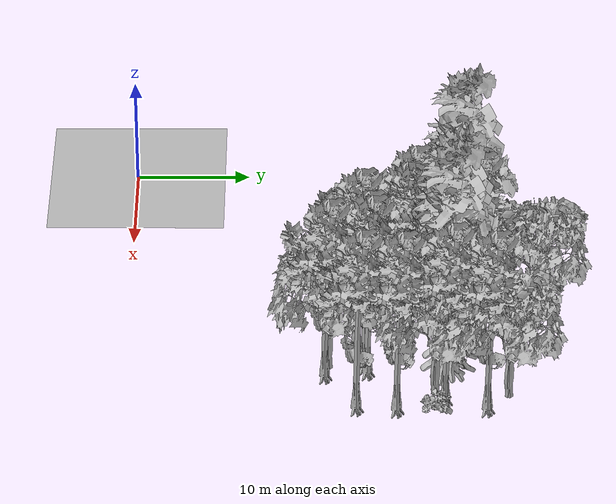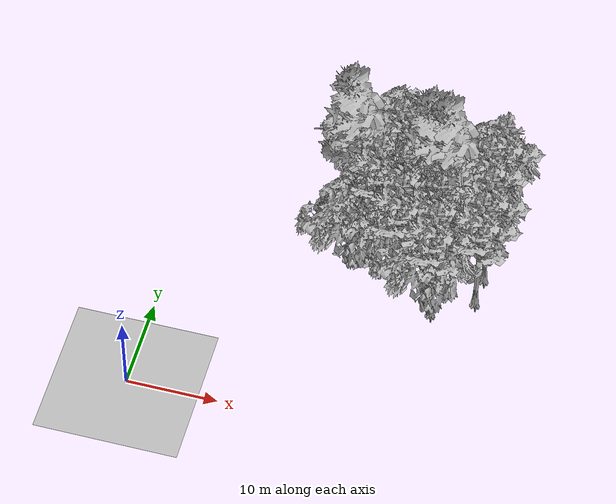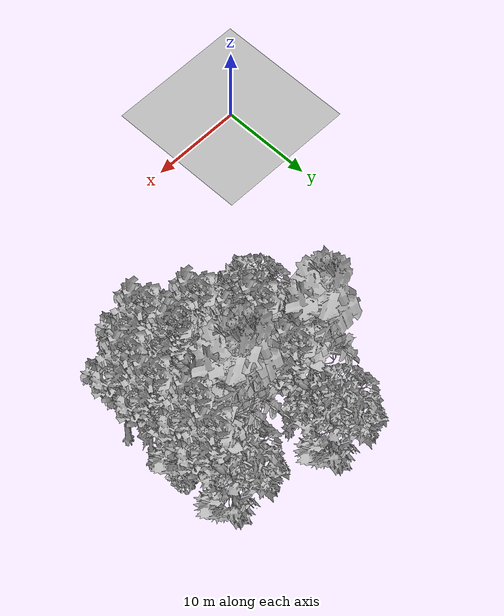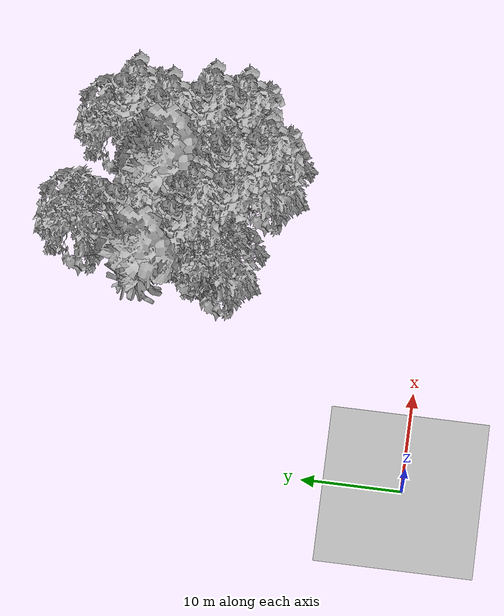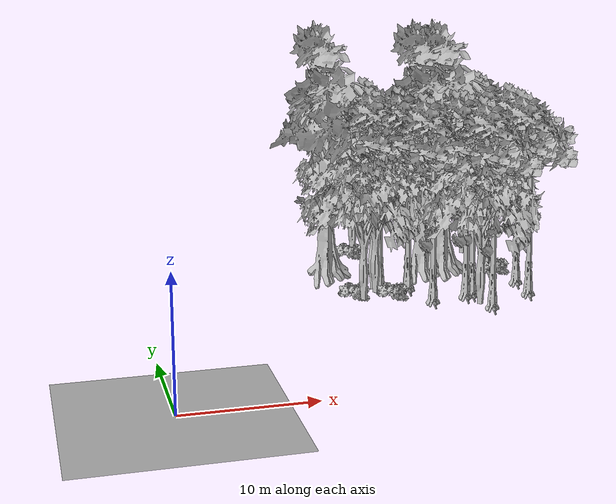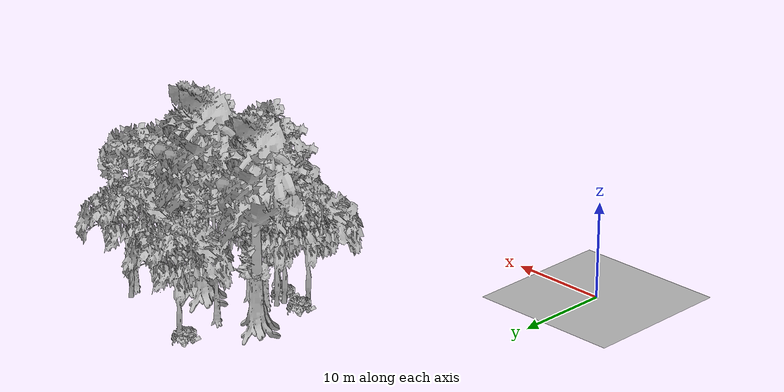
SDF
<sdf version="1.7">
 <world name="default">
  <model name="ground_plane">
   <static>1</static>
   <link name="link">
    <collision name="collision">
     <geometry><plane><normal>0 0 1</normal><size>70 70</size></plane></geometry>
     <surface><contact><ode><min_depth>0.01</min_depth><max_vel>0</max_vel></ode></contact></surface>
    </collision>
    <visual name="grass">
     <cast_shadows>0</cast_shadows>
     <geometry>
      <mesh>
       <scale>0.29000000000000004 0.29000000000000004 0.1</scale>
       <uri>file://grass_plane/meshes/grass_plane.dae</uri>
      </mesh>
     </geometry>
    </visual>
   </link>
  </model>
  <model name="Tree 5">
   <static>1</static>
   <pose>17.554701327103224 28.37882348100289 0 1.57079 -0 0</pose>
   <link name="link">
    <collision name="collision">
     <geometry><mesh><scale>5 5 5</scale><uri>model://tree_4/meshes/tree_4.obj</uri></mesh></geometry>
    </collision>
    <visual name="visual">
     <geometry><mesh><scale>5 5 5</scale><uri>model://tree_4/meshes/tree_4.obj</uri></mesh></geometry>
    </visual>
   </link>
  </model>
  <model name="Tree 16">
   <static>1</static>
   <pose>23.783157276569398 23.85742574105118 0 1.57079 -0 0</pose>
   <link name="link">
    <collision name="collision">
     <geometry><mesh><scale>5 5 5</scale><uri>model://tree_9/meshes/tree_9.obj</uri></mesh></geometry>
    </collision>
    <visual name="visual">
     <geometry><mesh><scale>5 5 5</scale><uri>model://tree_9/meshes/tree_9.obj</uri></mesh></geometry>
    </visual>
   </link>
  </model>
  <model name="Tree 28">
   <static>1</static>
   <pose>20.343108176317564 23.280481204357656 0 1.57079 -0 0</pose>
   <link name="link">
    <collision name="collision">
     <geometry><mesh><scale>5 5 5</scale><uri>model://tree_2/meshes/tree_2.obj</uri></mesh></geometry>
    </collision>
    <visual name="visual">
     <geometry><mesh><scale>5 5 5</scale><uri>model://tree_2/meshes/tree_2.obj</uri></mesh></geometry>
    </visual>
   </link>
  </model>
  <model name="Tree 29">
   <static>1</static>
   <pose>28.459324800288883 20.311680133557118 0 1.57079 -0 0</pose>
   <link name="link">
    <collision name="collision">
     <geometry><mesh><scale>5 5 5</scale><uri>model://tree_9/meshes/tree_9.obj</uri></mesh></geometry>
    </collision>
    <visual name="visual">
     <geometry><mesh><scale>5 5 5</scale><uri>model://tree_9/meshes/tree_9.obj</uri></mesh></geometry>
    </visual>
   </link>
  </model>
  <model name="Tree 51">
   <static>1</static>
   <pose>22.218995254534526 29.427761245832983 0 1.57079 -0 0</pose>
   <link name="link">
    <collision name="collision">
     <geometry><mesh><scale>5 5 5</scale><uri>model://tree_9/meshes/tree_9.obj</uri></mesh></geometry>
    </collision>
    <visual name="visual">
     <geometry><mesh><scale>5 5 5</scale><uri>model://tree_9/meshes/tree_9.obj</uri></mesh></geometry>
    </visual>
   </link>
  </model>
  <model name="Tree 81">
   <static>1</static>
   <pose>24.617984174921354 19.423598925091028 0 1.57079 -0 0</pose>
   <link name="link">
    <collision name="collision">
     <geometry><mesh><scale>5 5 5</scale><uri>model://tree_9/meshes/tree_9.obj</uri></mesh></geometry>
    </collision>
    <visual name="visual">
     <geometry><mesh><scale>5 5 5</scale><uri>model://tree_9/meshes/tree_9.obj</uri></mesh></geometry>
    </visual>
   </link>
  </model>
  <model name="Tree 91">
   <static>1</static>
   <pose>28.02528212831031 27.108075205009648 0 1.57079 -0 0</pose>
   <link name="link">
    <collision name="collision">
     <geometry><mesh><scale>5 5 5</scale><uri>model://tree_4/meshes/tree_4.obj</uri></mesh></geometry>
    </collision>
    <visual name="visual">
     <geometry><mesh><scale>5 5 5</scale><uri>model://tree_4/meshes/tree_4.obj</uri></mesh></geometry>
    </visual>
   </link>
  </model>
  <model name="Tree 97">
   <static>1</static>
   <pose>33.269615217792705 19.336078818611448 0 1.57079 -0 0</pose>
   <link name="link">
    <collision name="collision">
     <geometry><mesh><scale>5 5 5</scale><uri>model://tree_9/meshes/tree_9.obj</uri></mesh></geometry>
    </collision>
    <visual name="visual">
     <geometry><mesh><scale>5 5 5</scale><uri>model://tree_9/meshes/tree_9.obj</uri></mesh></geometry>
    </visual>
   </link>
  </model>
  <model name="Tree 114">
   <static>1</static>
   <pose>32.2863269273936 26.726637115351828 0 1.57079 -0 0</pose>
   <link name="link">
    <collision name="collision">
     <geometry><mesh><scale>5 5 5</scale><uri>model://tree_9/meshes/tree_9.obj</uri></mesh></geometry>
    </collision>
    <visual name="visual">
     <geometry><mesh><scale>5 5 5</scale><uri>model://tree_9/meshes/tree_9.obj</uri></mesh></geometry>
    </visual>
   </link>
  </model>
  <model name="Tree 136">
   <static>1</static>
   <pose>23.63129165080357 23.254099746061804 0 1.57079 -0 0</pose>
   <link name="link">
    <collision name="collision">
     <geometry><mesh><scale>5 5 5</scale><uri>model://tree_9/meshes/tree_9.obj</uri></mesh></geometry>
    </collision>
    <visual name="visual">
     <geometry><mesh><scale>5 5 5</scale><uri>model://tree_9/meshes/tree_9.obj</uri></mesh></geometry>
    </visual>
   </link>
  </model>
  <model name="Tree 140">
   <static>1</static>
   <pose>27.78838341750646 20.05177135492201 0 1.57079 -0 0</pose>
   <link name="link">
    <collision name="collision">
     <geometry><mesh><scale>5 5 5</scale><uri>model://tree_9/meshes/tree_9.obj</uri></mesh></geometry>
    </collision>
    <visual name="visual">
     <geometry><mesh><scale>5 5 5</scale><uri>model://tree_9/meshes/tree_9.obj</uri></mesh></geometry>
    </visual>
   </link>
  </model>
  <model name="Tree 154">
   <static>1</static>
   <pose>31.70966095761146 32.009826295775014 0 1.57079 -0 0</pose>
   <link name="link">
    <collision name="collision">
     <geometry><mesh><scale>5 5 5</scale><uri>model://tree_2/meshes/tree_2.obj</uri></mesh></geometry>
    </collision>
    <visual name="visual">
     <geometry><mesh><scale>5 5 5</scale><uri>model://tree_2/meshes/tree_2.obj</uri></mesh></geometry>
    </visual>
   </link>
  </model>
  <model name="Tree 169">
   <static>1</static>
   <pose>33.40637774664583 30.189914170681618 0 1.57079 -0 0</pose>
   <link name="link">
    <collision name="collision">
     <geometry><mesh><scale>5 5 5</scale><uri>model://tree_9/meshes/tree_9.obj</uri></mesh></geometry>
    </collision>
    <visual name="visual">
     <geometry><mesh><scale>5 5 5</scale><uri>model://tree_9/meshes/tree_9.obj</uri></mesh></geometry>
    </visual>
   </link>
  </model>
  <model name="Tree 178">
   <static>1</static>
   <pose>18.75817990418082 20.65745948856558 0 1.57079 -0 0</pose>
   <link name="link">
    <collision name="collision">
     <geometry><mesh><scale>5 5 5</scale><uri>model://tree_2/meshes/tree_2.obj</uri></mesh></geometry>
    </collision>
    <visual name="visual">
     <geometry><mesh><scale>5 5 5</scale><uri>model://tree_2/meshes/tree_2.obj</uri></mesh></geometry>
    </visual>
   </link>
  </model>
  <model name="Tree 182">
   <static>1</static>
   <pose>21.273849386636158 23.99300848130232 0 1.57079 -0 0</pose>
   <link name="link">
    <collision name="collision">
     <geometry><mesh><scale>5 5 5</scale><uri>model://tree_9/meshes/tree_9.obj</uri></mesh></geometry>
    </collision>
    <visual name="visual">
     <geometry><mesh><scale>5 5 5</scale><uri>model://tree_9/meshes/tree_9.obj</uri></mesh></geometry>
    </visual>
   </link>
  </model>
  <model name="Tree 206">
   <static>1</static>
   <pose>28.948441745368577 16.730375826815227 0 1.57079 -0 0</pose>
   <link name="link">
    <collision name="collision">
     <geometry><mesh><scale>5 5 5</scale><uri>model://tree_9/meshes/tree_9.obj</uri></mesh></geometry>
    </collision>
    <visual name="visual">
     <geometry><mesh><scale>5 5 5</scale><uri>model://tree_9/meshes/tree_9.obj</uri></mesh></geometry>
    </visual>
   </link>
  </model>
  <model name="Tree 209">
   <static>1</static>
   <pose>26.285940740393123 27.314547572535773 0 1.57079 -0 0</pose>
   <link name="link">
    <collision name="collision">
     <geometry><mesh><scale>5 5 5</scale><uri>model://tree_4/meshes/tree_4.obj</uri></mesh></geometry>
    </collision>
    <visual name="visual">
     <geometry><mesh><scale>5 5 5</scale><uri>model://tree_4/meshes/tree_4.obj</uri></mesh></geometry>
    </visual>
   </link>
  </model>
  <model name="Tree 219">
   <static>1</static>
   <pose>21.61332907183877 34.592983988575625 0 1.57079 -0 0</pose>
   <link name="link">
    <collision name="collision">
     <geometry><mesh><scale>5 5 5</scale><uri>model://tree_2/meshes/tree_2.obj</uri></mesh></geometry>
    </collision>
    <visual name="visual">
     <geometry><mesh><scale>5 5 5</scale><uri>model://tree_2/meshes/tree_2.obj</uri></mesh></geometry>
    </visual>
   </link>
  </model>
  <model name="Tree 223">
   <static>1</static>
   <pose>27.86664199193376 17.026420902220273 0 1.57079 -0 0</pose>
   <link name="link">
    <collision name="collision">
     <geometry><mesh><scale>5 5 5</scale><uri>model://tree_2/meshes/tree_2.obj</uri></mesh></geometry>
    </collision>
    <visual name="visual">
     <geometry><mesh><scale>5 5 5</scale><uri>model://tree_2/meshes/tree_2.obj</uri></mesh></geometry>
    </visual>
   </link>
  </model>
  <model name="Tree 226">
   <static>1</static>
   <pose>31.39666471019227 25.891716264204234 0 1.57079 -0 0</pose>
   <link name="link">
    <collision name="collision">
     <geometry><mesh><scale>5 5 5</scale><uri>model://tree_2/meshes/tree_2.obj</uri></mesh></geometry>
    </collision>
    <visual name="visual">
     <geometry><mesh><scale>5 5 5</scale><uri>model://tree_2/meshes/tree_2.obj</uri></mesh></geometry>
    </visual>
   </link>
  </model>
  <model name="Tree 230">
   <static>1</static>
   <pose>33.48543555075716 22.68212584879644 0 1.57079 -0 0</pose>
   <link name="link">
    <collision name="collision">
     <geometry><mesh><scale>5 5 5</scale><uri>model://tree_9/meshes/tree_9.obj</uri></mesh></geometry>
    </collision>
    <visual name="visual">
     <geometry><mesh><scale>5 5 5</scale><uri>model://tree_9/meshes/tree_9.obj</uri></mesh></geometry>
    </visual>
   </link>
  </model>
  <model name="Tree 231">
   <static>1</static>
   <pose>20.281055681246258 22.346895854114003 0 1.57079 -0 0</pose>
   <link name="link">
    <collision name="collision">
     <geometry><mesh><scale>5 5 5</scale><uri>model://tree_2/meshes/tree_2.obj</uri></mesh></geometry>
    </collision>
    <visual name="visual">
     <geometry><mesh><scale>5 5 5</scale><uri>model://tree_2/meshes/tree_2.obj</uri></mesh></geometry>
    </visual>
   </link>
  </model>
  <model name="Bush 10">
   <static>1</static>
   <pose>21.193216710812514 34.157234747886946 0 1.57079 -0 0</pose>
   <link name="link">
    <collision name="collision">
     <geometry><mesh><scale>2 2 2</scale><uri>model://bush_2/meshes/bush_2.obj</uri></mesh></geometry>
    </collision>
    <visual name="visual">
     <geometry><mesh><scale>5 5 5</scale><uri>model://bush_2/meshes/bush_2.obj</uri></mesh></geometry>
    </visual>
   </link>
  </model>
  <model name="Bush 38">
   <static>1</static>
   <pose>21.569982649164622 21.145830320336437 0 1.57079 -0 0</pose>
   <link name="link">
    <collision name="collision">
     <geometry><mesh><scale>2 2 2</scale><uri>model://bush_2/meshes/bush_2.obj</uri></mesh></geometry>
    </collision>
    <visual name="visual">
     <geometry><mesh><scale>5 5 5</scale><uri>model://bush_2/meshes/bush_2.obj</uri></mesh></geometry>
    </visual>
   </link>
  </model>
  <model name="Bush 39">
   <static>1</static>
   <pose>32.7265157668765 26.000458213351735 0 1.57079 -0 0</pose>
   <link name="link">
    <collision name="collision">
     <geometry><mesh><scale>2 2 2</scale><uri>model://bush_2/meshes/bush_2.obj</uri></mesh></geometry>
    </collision>
    <visual name="visual">
     <geometry><mesh><scale>5 5 5</scale><uri>model://bush_2/meshes/bush_2.obj</uri></mesh></geometry>
    </visual>
   </link>
  </model>
  <model name="Bush 53">
   <static>1</static>
   <pose>18.39101278427185 21.967975382510076 0 1.57079 -0 0</pose>
   <link name="link">
    <collision name="collision">
     <geometry><mesh><scale>2 2 2</scale><uri>model://bush_2/meshes/bush_2.obj</uri></mesh></geometry>
    </collision>
    <visual name="visual">
     <geometry><mesh><scale>5 5 5</scale><uri>model://bush_2/meshes/bush_2.obj</uri></mesh></geometry>
    </visual>
   </link>
  </model>
 </world>
</sdf>
